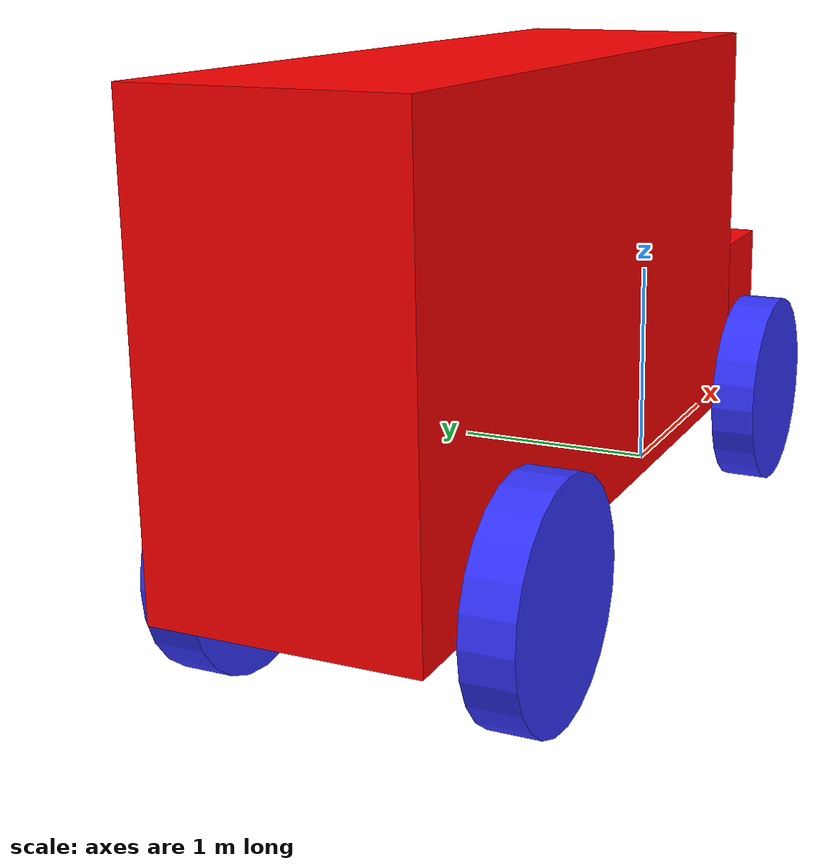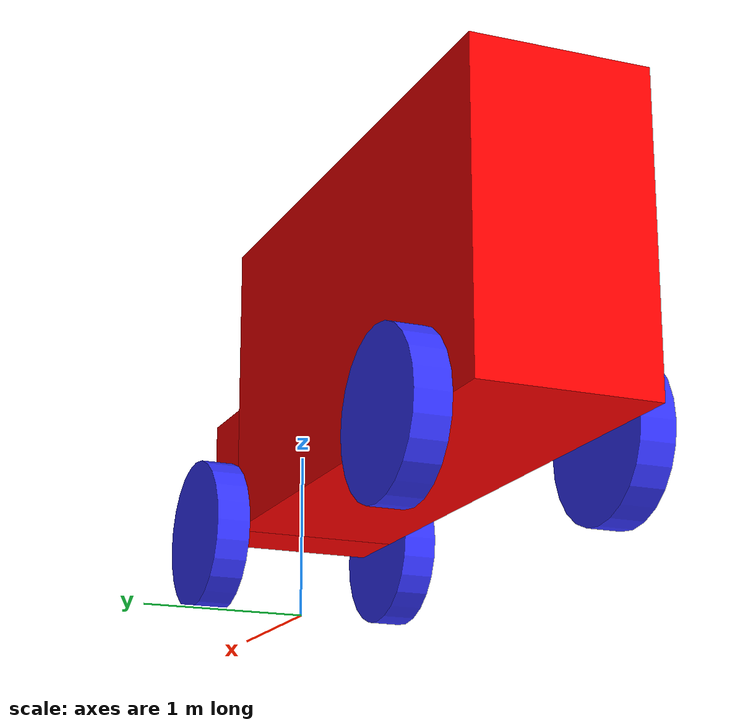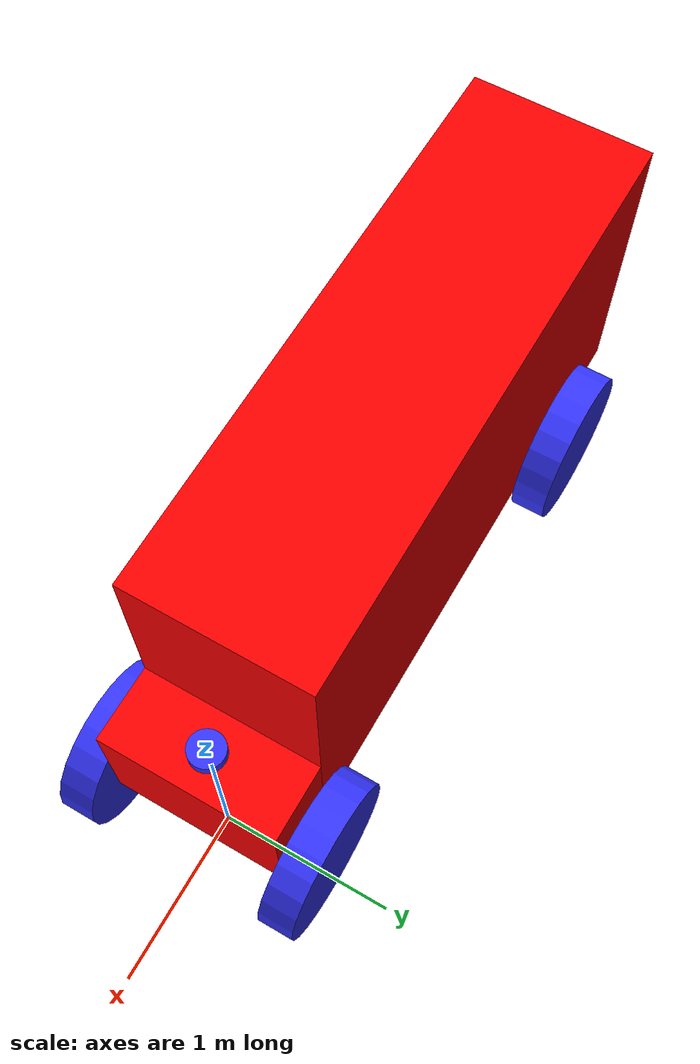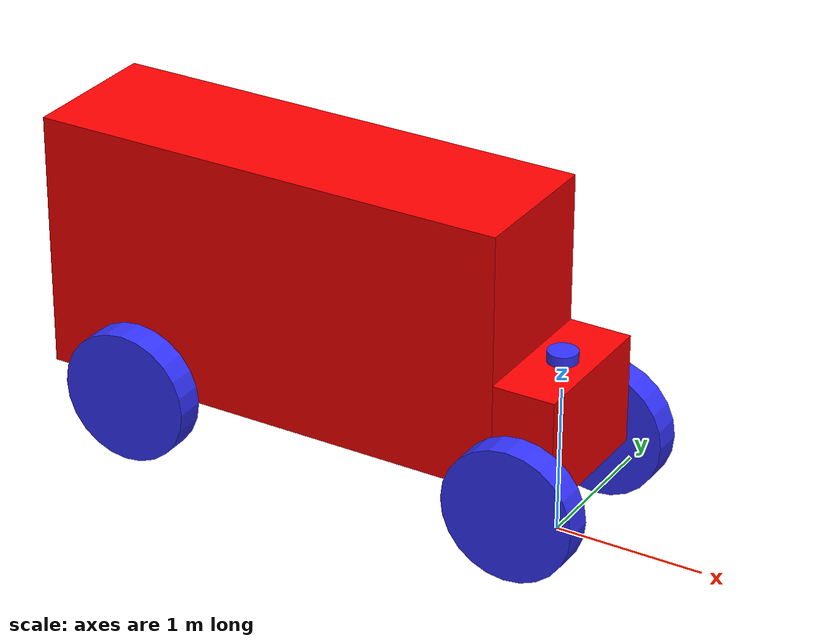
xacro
<?xml version="1.0"?>
<robot xmlns:xacro="http://www.ros.org/wiki/xacro"  name="golf_car">

   <xacro:include filename="inertial_macros.xacro"/>

    <material name="white">
        <color rgba="1 1 1 1" />
    </material>

    <material name="orange">
        <color rgba="1 0.3 0.1 1"/>
    </material>

    <material name="blue">
        <color rgba="0.2 0.2 1 1"/>
    </material>

    <material name="black">
        <color rgba="0 0 0 1"/>
    </material>

    <material name="red">
        <color rgba="1 0 0 1"/>
    </material>

    <!-- base_footprint-->

    <link name="base_footprint" />

    <!-- base_link-->

    <link name="base_link" />

    <joint name="base_joint" type="fixed">
        <parent link="base_footprint"/>
        <child link="base_link" />
        <origin xyz="0 0 0.45" rpy="0 0 0" />
    </joint>

    <!-- chassis-->

    <link name="chassis" />

    <joint name="main_joint" type="fixed">
        <parent link="base_link"/>
        <child link="chassis" />
        <origin xyz="-1.85 0 0" rpy="0 0 0" />
    </joint>

    <!-- back_link-->

    <link name="back_link">
        <visual>
            <geometry>
                <box size="3.28 1 1.75"/>
            </geometry>

            <material name="red" />
        </visual>
        <collision>
            <geometry>
                <box size="3.28 1 1.75"/>
            </geometry>

        </collision>
        <xacro:inertial_box mass="0.1" x="3.28" y="1" z="1.75" >
            <origin xyz="0 0 0" rpy="0 0 0" />
        </xacro:inertial_box>

    </link>

    <joint name="back_joint" type="fixed">
        <parent link="chassis"/>
        <child link="back_link" />
        <origin xyz="0 0 0.875" rpy="0 0 0" />
    </joint>

    <!-- front_link-->

    <link name="front_link">
        <visual>
            <geometry>
                <box size="0.42 1 0.75"/>
            </geometry>

            <material name="red" />
        </visual>

        <collision>
            <geometry>
                <box size="0.42 1 0.75"/>
            </geometry>

        </collision>
        <xacro:inertial_box mass="0.1" x="0.42" y="1" z="0.75" >
            <origin xyz="0 0 0" rpy="0 0 0" />
        </xacro:inertial_box>
    </link>

    <joint name="base_front_joint" type="fixed">
        <parent link="base_link" />
        <child link="front_link" />
        <origin xyz="0 0 0.375" rpy="0 0 0" />
    </joint>

    <!-- rear_wheels-->

    <link name="Left_rear_wheel">
        <visual>
            <geometry>
                <cylinder radius="0.45" length="0.2" />
            </geometry>
            <material name="blue" />
        </visual>
        <collision>
            <geometry>
                <sphere radius="0.45"/>
            </geometry>

        </collision>
        <xacro:inertial_cylinder mass="1.5" length="0.2" radius="0.45" >
            <origin xyz="0 0 0" rpy="0 0 0" />

        </xacro:inertial_cylinder>
    </link>

    <link name="Right_rear_wheel">
        <visual>
            <geometry>
                <cylinder radius="0.45" length="0.2" />
            </geometry>
            <material name="blue" />
        </visual>
        <collision>
            <geometry>
                <sphere radius="0.45"/>
            </geometry>

        </collision>
        <xacro:inertial_cylinder mass="1.5" length="0.2" radius="0.45" >
            <origin xyz="0 0 0" rpy="0 0 0" />

        </xacro:inertial_cylinder>
    </link>

    <joint name="Left_rear_wheel_joint" type="continuous">
        <parent link="chassis" />
        <child link="Left_rear_wheel" />
        <origin xyz="-0.96 0.6 0" rpy="-${pi/2} 0 0" />
        <axis xyz="0 0 1"/>
    </joint>

    <joint name="Right_rear_wheel_joint" type="continuous">
        <parent link="chassis" />
        <child link="Right_rear_wheel" />
        <origin xyz="-0.96 -0.6 0" rpy="${pi/2}  0 0" />
        <axis xyz="0 0 -1"/>
    </joint>

    <!-- front_wheels-->

    <link name="steering_link">
        <visual>
            <geometry>
                <box size="0.01 0.01 0.01"/>
            </geometry>
            <origin xyz="0 0 0" rpy="0 0 0" />
            <material name="red" />
        </visual>
        <collision>
            <geometry>
                <box size="0.01 0.01 0.01"/>
            </geometry>
            <origin xyz="0 0 0" rpy="0 0 0" />

        </collision>
        <xacro:inertial_box mass="0.01" x="0.01" y="0.01" z="0.01" >
            <origin xyz="0 0 0" rpy="0 0 0" />
        </xacro:inertial_box>

    </link>

    <joint name="steering_joint" type="revolute">
        <parent link="base_link" />
        <child link="steering_link" />
        <origin xyz="0 0 0" rpy="0 0 0" />
        <limit effort="100" lower="-0.41" upper="0.41" velocity="0.5"/>
        <axis xyz="0 0 1"/>
    </joint>

    <link name="Right_front_wheel">
        <visual>
            <geometry>
                <cylinder radius="0.45" length="0.2" />
            </geometry>
            <material name="blue" />
        </visual>
        <collision>
            <geometry>
                <sphere radius="0.45"/>
            </geometry>

        </collision>
        <xacro:inertial_cylinder mass="1.5" length="0.2" radius="0.45" >
            <origin xyz="0 0 0" rpy="0 0 0" />

        </xacro:inertial_cylinder>
    </link>

    <link name="Left_front_wheel">
        <visual>
            <geometry>
                <cylinder radius="0.45" length="0.2" />
            </geometry>
            <material name="blue" />
        </visual>
        <collision>
            <geometry>
                <sphere radius="0.45"/>
            </geometry>
        </collision>
        <xacro:inertial_cylinder mass="1.5" length="0.2" radius="0.45" >
            <origin xyz="0 0 0" rpy="0 0 0" />

        </xacro:inertial_cylinder>
    </link>

    <link name="left_steer_link">
        <visual>
            <geometry>
                <box size="0.01 0.01 0.01"/>
            </geometry>
            <origin xyz="0 0 0" rpy="0 0 0" />
            <material name="blue" />
        </visual>
        <collision>
            <geometry>
                <box size="0.01 0.01 0.01"/>
            </geometry>
            <origin xyz="0 0 0" rpy="0 0 0" />

        </collision>
        <xacro:inertial_box mass="0.01" x="0.01" y="0.01" z="0.01" >
            <origin xyz="0 0 0" rpy="0 0 0" />
        </xacro:inertial_box>

    </link>
    <link name="right_steer_link">
        <visual>
            <geometry>
                <box size="0.01 0.01 0.01"/>
            </geometry>
            <origin xyz="0 0 0" rpy="0 0 0" />
            <material name="blue" />
        </visual>
        <collision>
            <geometry>
                <box size="0.01 0.01 0.01"/>
            </geometry>
            <origin xyz="0 0 0" rpy="0 0 0" />

        </collision>
        <xacro:inertial_box mass="0.01" x="0.01" y="0.01" z="0.01" >
            <origin xyz="0 0 0" rpy="0 0 0" />
        </xacro:inertial_box>

    </link>

    <joint name="left_steer_joint" type="revolute">
        <parent link="base_link" />
        <child link="left_steer_link" />
        <origin xyz="0 0.6 0" rpy="0 0 0" />
        <limit effort="10" lower="-0.45" upper="0.45" velocity="0.1"/>
        <axis xyz="0 0 1"/>
    </joint>
    <joint name="right_steer_joint" type="revolute">
        <parent link="base_link" />
        <child link="right_steer_link" />
        <origin xyz="0 -0.6 0" rpy="0 0 0" />
        <limit effort="10" lower="-0.45" upper="0.45" velocity="0.1"/>
        <axis xyz="0 0 1"/>
    </joint>

    <joint name="Left_front_wheel_joint" type="continuous">
        <parent link="left_steer_link" />
        <child link="Left_front_wheel" />
        <origin xyz="0 0 0" rpy="-${pi/2} 0 0" />
        <axis xyz="0 0 1"/>
    </joint>

    <joint name="Right_front_wheel_joint" type="continuous">
        <parent link="right_steer_link" />
        <child link="Right_front_wheel" />
        <origin xyz="0 0 0" rpy="${pi/2} 0 0" />
        <axis xyz="0 0 -1"/>
    </joint>

     <!-- velodyne-->
        <link name="laser_frame">
        <visual>
            <geometry>
                <cylinder radius="0.1" length="0.072" />
            </geometry>
            <origin xyz="0 0 0" rpy="0 0 0" />
            <material name="blue" />
        </visual>
    </link>

    <joint name="base_lidar_joint" type="fixed">
        <parent link="base_link" />
        <child link="laser_frame" />
        <origin xyz="0 0 0.786" rpy="0 0 0" />
    </joint>

    <gazebo reference="front_link">
        <material>Gazebo/Red</material>
    </gazebo>
    <gazebo reference="back_link">
        <material>Gazebo/Red</material>
    </gazebo>
    <gazebo reference="steering_link">
        <material>Gazebo/Red</material>
    </gazebo>
    <gazebo reference="Left_front_wheel">
        <material>Gazebo/Blue</material>
    </gazebo>
    <gazebo reference="Right_front_wheel">
        <material>Gazebo/Blue</material>
    </gazebo>
    <gazebo reference="Left_rear_wheel">
        <material>Gazebo/Blue</material>
    </gazebo>
    <gazebo reference="Right_rear_wheel">
        <material>Gazebo/Blue</material>
    </gazebo>
    <gazebo reference="left_steer_link">
        <material>Gazebo/Blue</material>
    </gazebo>
    <gazebo reference="right_steer_link">
        <material>Gazebo/Blue</material>
    </gazebo>

    <gazebo reference="laser_frame">
        <material>Gazebo/Blue</material>

        <sensor name="laser" type="ray">
            <pose> 0 0 0 0 0 0 </pose>
            <visualize>false</visualize>
            <update_rate>10.0</update_rate>
            <ray>
                <scan>
                    <horizontal>
                        <samples>2000</samples>
                        <min_angle>-1.57</min_angle>
                        <max_angle>1.57</max_angle>
                    </horizontal>
                </scan>
                <range>
                    <min>0.3</min>
                    <max>100</max>
                </range>
            </ray>
            <plugin name="laser_controller" filename="libgazebo_ros_ray_sensor.so">
                <ros>
                    <argument>~/out:=scan</argument>
                </ros>
                <output_type>sensor_msgs/LaserScan</output_type>
                <frame_name>laser_frame</frame_name>
            </plugin>
        </sensor>
    </gazebo>

    <gazebo>
	<plugin name="gazebo_ros_ackermann_drive" filename="libgazebo_ros_ackermann_drive.so">

	  <update_rate>100.0</update_rate>

	  <!-- wheels -->
	  <front_left_joint>Left_front_wheel_joint</front_left_joint>
	  <front_right_joint>Right_front_wheel_joint</front_right_joint>
	  <rear_left_joint>Left_rear_wheel_joint</rear_left_joint>
	  <rear_right_joint>Right_rear_wheel_joint</rear_right_joint>
	  <left_steering_joint>left_steer_joint</left_steering_joint>
	  <right_steering_joint>right_steer_joint</right_steering_joint>

	  <!-- Max absolute steer angle for tyre in radians-->
	  <!-- Any cmd_vel angular z greater than this would be capped -->
	  <max_steer>0.6458</max_steer>

	  <!-- Max absolute steering angle of steering wheel -->
	  <max_steering_angle>7.85</max_steering_angle>

	  <!-- Max absolute linear speed in m/s -->
	  <max_speed>20</max_speed>

	  <!-- PID tuning -->
	  <left_steering_pid_gain>100 0 1</left_steering_pid_gain>
	  <left_steering_i_range>0 0</left_steering_i_range>
	  <right_steering_pid_gain>100 0 1</right_steering_pid_gain>
	  <right_steering_i_range>0 0</right_steering_i_range>
	  <linear_velocity_pid_gain>100 0 1</linear_velocity_pid_gain>
	  <linear_velocity_i_range>0 0</linear_velocity_i_range>

	  <!-- output -->
	  <publish_odom>true</publish_odom>
	  <publish_odom_tf>true</publish_odom_tf>
	  <publish_wheel_tf>false</publish_wheel_tf>
	  <publish_distance>true</publish_distance>
	  <publish_steerangle>true</publish_steerangle>

	  <odometry_frame>odom</odometry_frame>
	  <robot_base_frame>base_footprint</robot_base_frame>

	</plugin>
    </gazebo>

    <gazebo>
          <plugin name="robot_joint_state" filename="libgazebo_ros_joint_state_publisher.so">
        <ros>
            <remapping>~/out:=joint_states</remapping>
        </ros>
        <update_rate>100.0</update_rate>
        <joint_name>Left_front_wheel_joint</joint_name>
        <joint_name>Right_front_wheel_joint</joint_name>
        <joint_name>Left_rear_wheel_joint</joint_name>
        <joint_name>Right_rear_wheel_joint</joint_name>
        <joint_name>left_steer_joint</joint_name>
        <joint_name>right_steer_joint</joint_name>
        <joint_name>steering_joint</joint_name>
        </plugin>
      </gazebo>

    <link name="gps_link">
        <visual>
            <geometry>
                <box size="0.01 0.01 0.01"/>
            </geometry>
            <origin xyz="0 0 0" rpy="0 0 0" />
            <material name="red" />
        </visual>
        <collision>
            <geometry>
                <box size="0.01 0.01 0.01"/>
            </geometry>
            <origin xyz="0 0 0" rpy="0 0 0" />

        </collision>
        <xacro:inertial_box mass="0.01" x="0.01" y="0.01" z="0.01" >
            <origin xyz="0 0 0" rpy="0 0 0" />
        </xacro:inertial_box>

    </link>

    <!-- Joint to attach the GPS link to the base link -->
    <joint name="gps_joint" type="fixed">
            <parent link="base_link"/>
            <child link="gps_link"/>
            <origin xyz="0 0 0" rpy="0 0 0"/>
            </joint>

  <!-- Gazebo Plugin for GPS using reference -->
  <gazebo reference="gps_link">
    <material>Gazebo/Red</material>
    <sensor name="tb3_gps" type="gps">
      <always_on>true</always_on>
      <update_rate>1.0</update_rate>
      <pose>0 0 0 0 0 0</pose>
      <gps>
        <position_sensing>
          <horizontal>
            <noise type="gaussian">
              <mean>0.0</mean>
              <stddev>0.0</stddev>
            </noise>
          </horizontal>
          <vertical>
            <noise type="gaussian">
              <mean>0.0</mean>
              <stddev>5.0</stddev>
            </noise>
          </vertical>
        </position_sensing>
      </gps>
      <plugin name="gps_plugin" filename="libgazebo_ros_gps_sensor.so">
        <ros>
          <remapping>~/out:=/gps/fix</remapping>
        </ros>
      </plugin>
    </sensor>
  </gazebo>

</robot>
